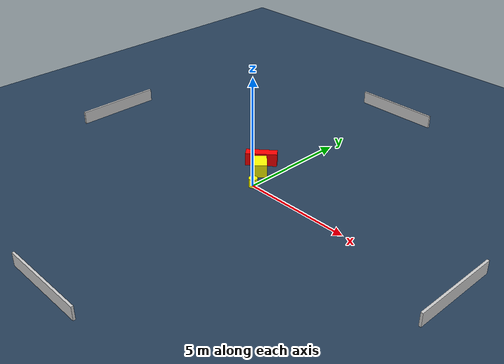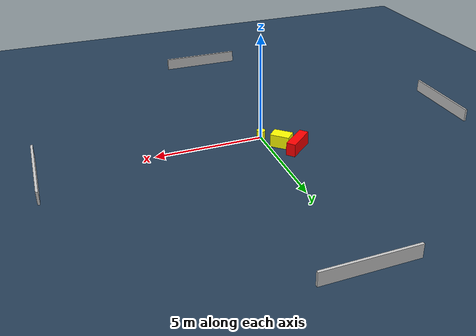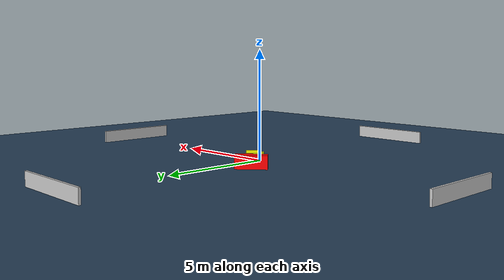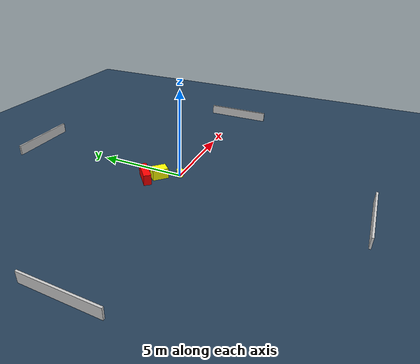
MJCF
<?xml version="1.0" ?>
<mujoco model="generated_environment">
  <option timestep="0.01" integrator="RK4" cone="elliptic"/>
  <default>
    <geom density="1"/>
  </default>
  <asset>
    <texture builtin="gradient" height="3072" name="skybox" rgb1="0.3 0.5 0.7" rgb2="0 0 0" type="skybox" width="512"/>
    <texture builtin="checker" height="300" name="groundplane" rgb1="0.2 0.3 0.4" rgb2="0.1 0.2 0.3" type="2d" width="300"/>
    <material name="groundplane" reflectance="0.2" texrepeat="5 5" texture="groundplane"/>
  </asset>
  <worldbody>
    <light dir="0 0 -1" directional="true" pos="0 0 1.5"/>
    <geom condim="3" friction="0.5 0.005 0.001" material="groundplane" name="floor" pos="0 0 0" size="0 0 0.05" type="plane"/>
    <body name="walls">
      <geom name="wall_1" condim="4" pos="-10.0 0.0 0.3" rgba="0.800000011920929 0.800000011920929 0.800000011920929 1.0" size="0.05 2.0 0.3" type="box"/>
      <geom name="wall_2" condim="4" pos="10.0 0.0 0.3" rgba="0.800000011920929 0.800000011920929 0.800000011920929 1.0" size="0.05 2.0 0.3" type="box"/>
      <geom name="wall_3" condim="4" pos="0.0 -10.0 0.3" rgba="0.800000011920929 0.800000011920929 0.800000011920929 1.0" size="2.0 0.05 0.3" type="box"/>
      <geom name="wall_4" condim="4" pos="0.0 10.0 0.3" rgba="0.800000011920929 0.800000011920929 0.800000011920929 1.0" size="2.0 0.05 0.3" type="box"/>
    </body>
    <body name="robot">
      <joint name="joint_x" type="slide" pos="0 0 0" axis="1 0 0"/>
      <joint name="joint_y" type="slide" pos="0 0 0" axis="0 1 0"/>
      <geom name="robot" type="cylinder" pos="0.0 0.0 0.2" size="0.2 0.2 0.0" mass="5.0" friction="1.0 0.005 0.0001" condim="4" rgba="1.0 1.0 0.0 1.0"/>
    </body>
    <body name="obstacle_1_movable">
      <geom name="obstacle_1_movable" condim="4" pos="-0.608477952920408 0.9983772626227082 0.3" euler="0 0 316.37781061297034" friction="0.0 0.005 0.001" rgba="1.0 1.0 0.0 1.0" size="0.4475985676386638 0.29970826297111874 0.3" type="box" mass="0.1"/>
      <joint type="free"/>
    </body>
    <body name="obstacle_2_static">
      <geom name="obstacle_2_static" condim="4" pos="-1.1337669170972005 1.5914815461146001 0.3" euler="0 0 310.8864781228412" friction="0.0 0.005 0.001" rgba="1.0 0.0 0.0 1.0" size="0.21168467644952454 0.7086413140660939 0.3" type="box"/>
    </body>
  </worldbody>
  <actuator>
    <motor name="actuator_x" joint="joint_x" gear="1" ctrlrange="-1 1"/>
    <motor name="actuator_y" joint="joint_y" gear="1" ctrlrange="-1 1"/>
  </actuator>
</mujoco>
